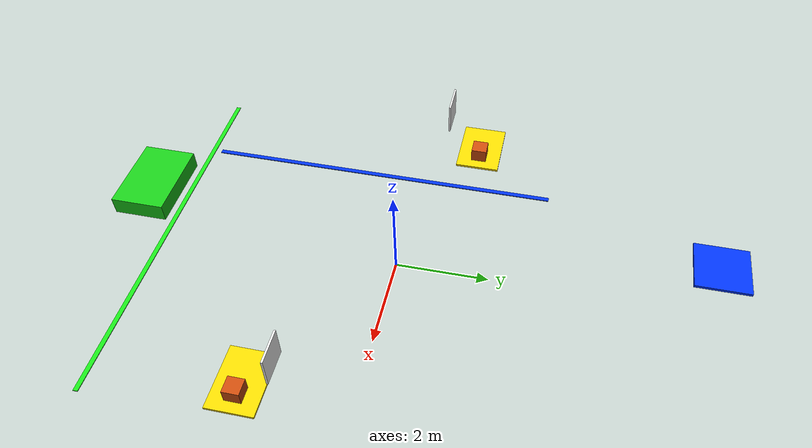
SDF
<sdf version="1.6">
 <world name="default">
  <gravity>0 0 -9.8</gravity>
  <physics default="0" name="default_physics" type="ode">
   <max_step_size>0.001</max_step_size>
   <real_time_factor>1</real_time_factor>
   <real_time_update_rate>1000</real_time_update_rate>
  </physics>
  <light name="Warehouse_CeilingLight_003" type="point">
   <pose>0 0 9 0 0 0</pose>
   <diffuse>0.5 0.5 0.5 1</diffuse>
   <specular>0.2 0.2 0.2 1</specular>
   <attenuation>
    <range>80</range>
    <constant>0.3</constant>
    <linear>0.01</linear>
    <quadratic>0.001</quadratic>
   </attenuation>
   <direction>0.1 0.1 -1</direction>
  </light>
  <model name="home_charging_station_A213696">
   <static>true</static>
   <pose>-1.3052 6.8435 0.03 0 0 0</pose>
   <link name="link">
    <collision name="collision"><geometry><box><size>1.20 1.20 0.06</size></box></geometry></collision>
    <visual name="visual">
     <geometry><box><size>1.20 1.20 0.06</size></box></geometry>
     <material><ambient>0.0 0.2 1.0 1</ambient><diffuse>0.0 0.2 1.0 1</diffuse></material>
    </visual>
   </link>
  </model>
  <model name="inventory_scan_zone_shelf_A">
   <static>true</static>
   <pose>-4.00 1.20 0.025 0 0 0</pose>
   <link name="link">
    <collision name="collision"><geometry><box><size>1.40 1.00 0.05</size></box></geometry></collision>
    <visual name="visual">
     <geometry><box><size>1.40 1.00 0.05</size></box></geometry>
     <material><ambient>1.0 0.85 0.0 1</ambient><diffuse>1.0 0.85 0.0 1</diffuse></material>
    </visual>
   </link>
  </model>
  <model name="inventory_scan_zone_shelf_B">
   <static>true</static>
   <pose>3.40 -2.20 0.025 0 0 0</pose>
   <link name="link">
    <collision name="collision"><geometry><box><size>1.40 1.00 0.05</size></box></geometry></collision>
    <visual name="visual">
     <geometry><box><size>1.40 1.00 0.05</size></box></geometry>
     <material><ambient>1.0 0.85 0.0 1</ambient><diffuse>1.0 0.85 0.0 1</diffuse></material>
    </visual>
   </link>
  </model>
  <model name="packing_dropoff_station">
   <static>true</static>
   <pose>-1.10 -6.00 0.20 0 0 0</pose>
   <link name="link">
    <collision name="collision"><geometry><box><size>1.80 1.20 0.40</size></box></geometry></collision>
    <visual name="visual">
     <geometry><box><size>1.80 1.20 0.40</size></box></geometry>
     <material><ambient>0.1 0.8 0.1 1</ambient><diffuse>0.1 0.8 0.1 1</diffuse></material>
    </visual>
   </link>
  </model>
  <model name="aruco_like_marker_shelf_A">
   <static>true</static>
   <pose>-4.00 0.45 1.10 0 0 0</pose>
   <link name="link">
    <visual name="white_board">
     <geometry><box><size>0.70 0.04 0.70</size></box></geometry>
     <material><ambient>1 1 1 1</ambient><diffuse>1 1 1 1</diffuse></material>
    </visual>
    <visual name="black_center">
     <pose>0 -0.03 0 0 0 0</pose>
     <geometry><box><size>0.34 0.04 0.34</size></box></geometry>
     <material><ambient>0 0 0 1</ambient><diffuse>0 0 0 1</diffuse></material>
    </visual>
   </link>
  </model>
  <model name="aruco_like_marker_shelf_B">
   <static>true</static>
   <pose>3.40 -1.45 1.10 0 0 0</pose>
   <link name="link">
    <visual name="white_board">
     <geometry><box><size>0.70 0.04 0.70</size></box></geometry>
     <material><ambient>1 1 1 1</ambient><diffuse>1 1 1 1</diffuse></material>
    </visual>
    <visual name="black_center">
     <pose>0 -0.03 0 0 0 0</pose>
     <geometry><box><size>0.34 0.04 0.34</size></box></geometry>
     <material><ambient>0 0 0 1</ambient><diffuse>0 0 0 1</diffuse></material>
    </visual>
   </link>
  </model>
  <model name="delivery_item_box_01">
   <static>true</static>
   <pose>-3.70 1.20 0.18 0 0 0</pose>
   <link name="link">
    <collision name="collision"><geometry><box><size>0.35 0.35 0.35</size></box></geometry></collision>
    <visual name="visual">
     <geometry><box><size>0.35 0.35 0.35</size></box></geometry>
     <material><ambient>0.8 0.3 0.05 1</ambient><diffuse>0.8 0.3 0.05 1</diffuse></material>
    </visual>
   </link>
  </model>
  <model name="delivery_item_box_02">
   <static>true</static>
   <pose>3.70 -2.20 0.18 0 0 0</pose>
   <link name="link">
    <collision name="collision"><geometry><box><size>0.35 0.35 0.35</size></box></geometry></collision>
    <visual name="visual">
     <geometry><box><size>0.35 0.35 0.35</size></box></geometry>
     <material><ambient>0.8 0.3 0.05 1</ambient><diffuse>0.8 0.3 0.05 1</diffuse></material>
    </visual>
   </link>
  </model>
  <model name="main_robot_lane_blue">
   <static>true</static>
   <pose>-2.60 -1.00 0.012 0 0 0</pose>
   <link name="link">
    <visual name="visual">
     <geometry><box><size>0.10 8.00 0.02</size></box></geometry>
     <material><ambient>0.0 0.2 1.0 1</ambient><diffuse>0.0 0.2 1.0 1</diffuse></material>
    </visual>
   </link>
  </model>
  <model name="cross_robot_lane_green">
   <static>true</static>
   <pose>0.00 -5.20 0.012 0 0 0</pose>
   <link name="link">
    <visual name="visual">
     <geometry><box><size>8.50 0.10 0.02</size></box></geometry>
     <material><ambient>0.1 0.9 0.1 1</ambient><diffuse>0.1 0.9 0.1 1</diffuse></material>
    </visual>
   </link>
  </model>
 </world>
</sdf>
